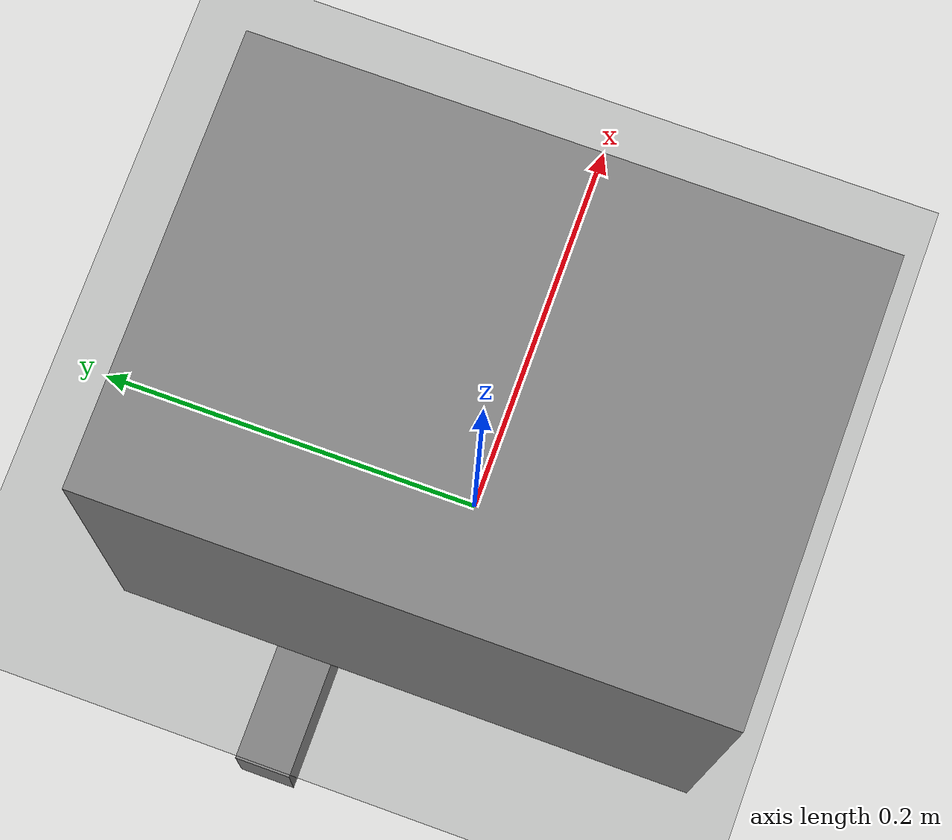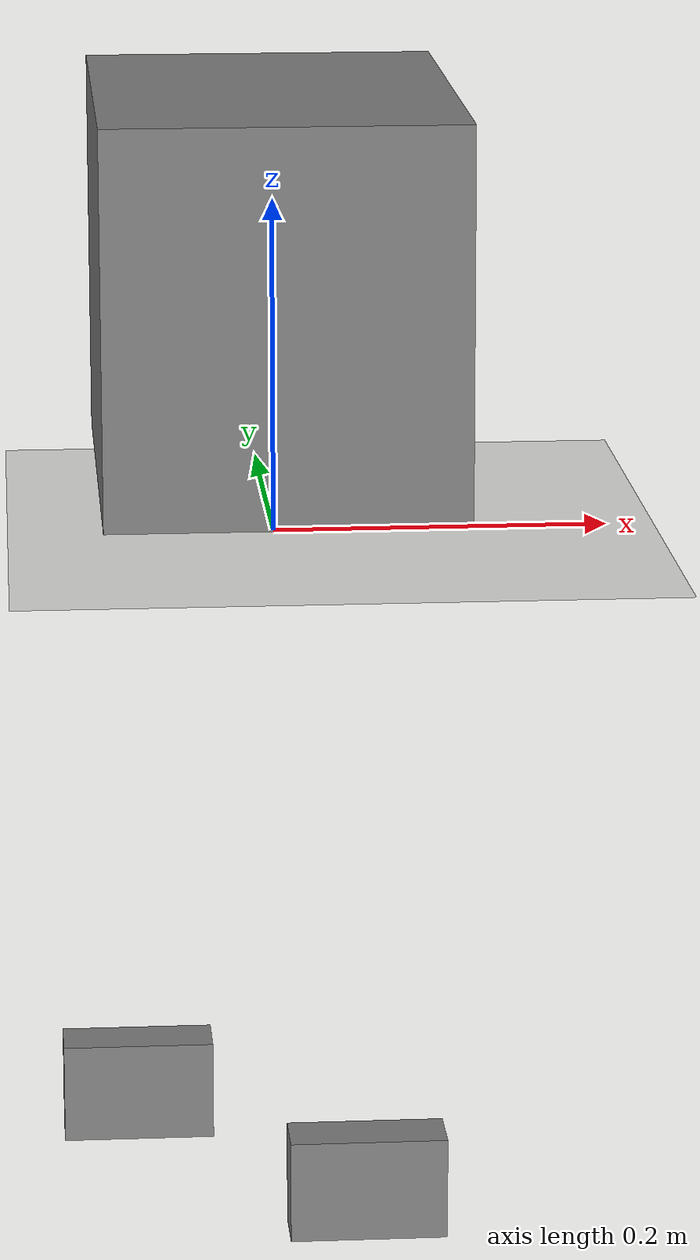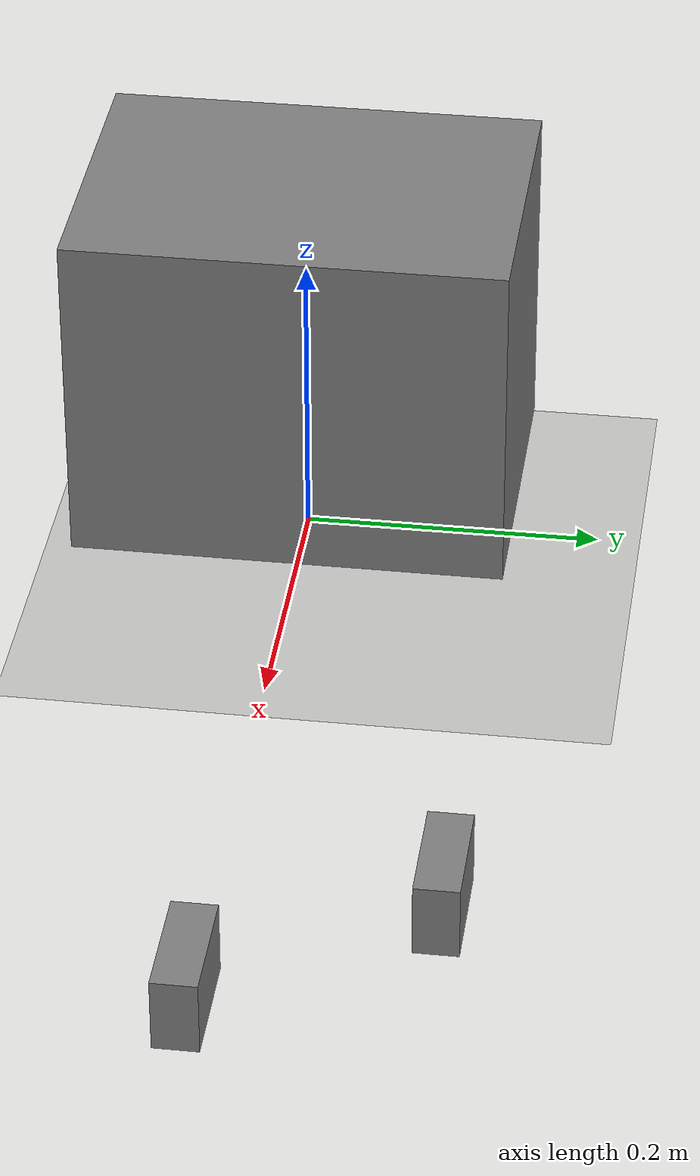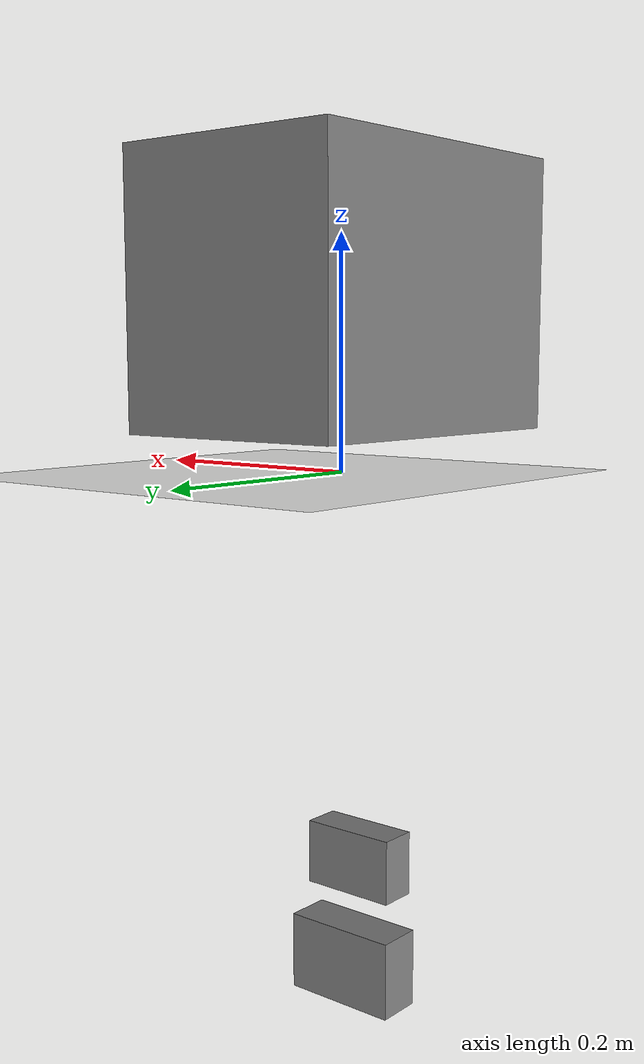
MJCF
<mujoco model="dodobot_v3">
  <!-- Global configuration -->
  <option timestep="0.002" gravity="0 0 -9.81"/>
  <compiler angle="radian" coordinate="local"/>
  <size njmax="2000" nconmax="500"/>

  <!-- Visual settings -->
  <visual>
    <global offwidth="1920" offheight="1080"/>
  </visual>

  <!-- Default properties -->
  <default>
    <joint damping="0.0" armature="0.0"/>
    <geom contype="1" conaffinity="1" friction="0.8 0.1 0.1"/>
  </default>

  <!-- World -->
  <worldbody>

    <!-- Ground -->
    <geom name="floor" type="plane" pos="0 0 0" size="5 5 0.1"/>

    <!-- Robot base -->
    <body name="body_link" pos="0 0 0.15">

      <inertial
        pos="-0.0049584 0.034185 -0.011531"
        mass="3.9306"
        diaginertia="0.0051203 0.0079906 0.0096283"/>

      <!-- body collision -->
      <geom type="box" size="0.105 0.145 0.115"/>

      <!-- RIGHT ARM -->
      <body name="right_link_1" pos="0.066 0 -0.092">
        <joint name="right_joint_1" type="hinge" axis="-1 0 0"
               range="-0.3 0.3"/>

        <body name="right_link_2" pos="-0.01705 0 -0.04009">
          <joint name="right_joint_2" type="hinge" axis="0 -1 0"
                 range="-1.5 1.5"/>

          <body name="right_link_3" pos="0 -0.0504 -0.2">
            <joint name="right_joint_3" type="hinge" axis="0 -1 0"
                   range="-1.5 1.5"/>

            <body name="right_link_4" pos="0 -0.03745 -0.2">
              <joint name="right_joint_4" type="hinge" axis="0 -1 0"
                     range="-1.5 1.5"/>

              <geom type="box" size="0.047 0.018 0.031"/>
            </body>
          </body>
        </body>
      </body>

      <!-- LEFT ARM -->
      <body name="left_link_1" pos="-0.066 0 -0.092">
        <joint name="left_joint_1" type="hinge" axis="-1 0 0"
               range="-0.3 0.3"/>

        <body name="left_link_2" pos="-0.01705 0.01295 -0.04009">
          <joint name="left_joint_2" type="hinge" axis="0 -1 0"
                 range="-1.5 1.5"/>

          <body name="left_link_3" pos="0 0.03745 -0.2">
            <joint name="left_joint_3" type="hinge" axis="0 -1 0"
                   range="-1.5 1.5"/>

            <body name="left_link_4" pos="0 0.03745 -0.2">
              <joint name="left_joint_4" type="hinge" axis="0 -1 0"
                     range="-1.5 1.5"/>

              <geom type="box" size="0.047 0.018 0.031"/>
            </body>
          </body>
        </body>
      </body>

    </body>
  </worldbody>

  <!-- Actuators (torque control) -->
  <actuator>
    <motor joint="left_joint_1"  ctrlrange="-3 3"/>
    <motor joint="right_joint_1" ctrlrange="-3 3"/>
    <motor joint="left_joint_2"  ctrlrange="-3 3"/>
    <motor joint="right_joint_2" ctrlrange="-3 3"/>
    <motor joint="left_joint_3"  ctrlrange="-3 3"/>
    <motor joint="right_joint_3" ctrlrange="-3 3"/>
    <motor joint="left_joint_4"  ctrlrange="-3 3"/>
    <motor joint="right_joint_4" ctrlrange="-3 3"/>
  </actuator>

</mujoco>
